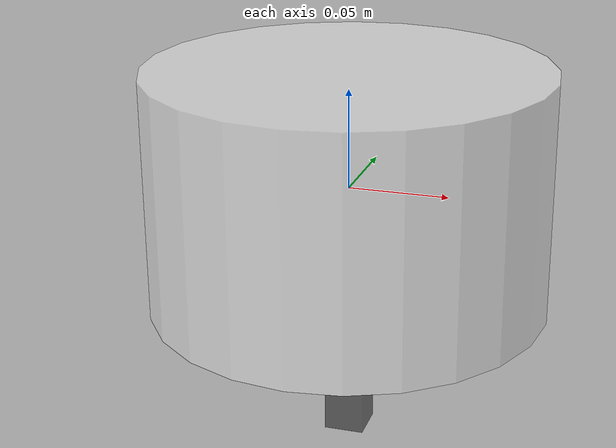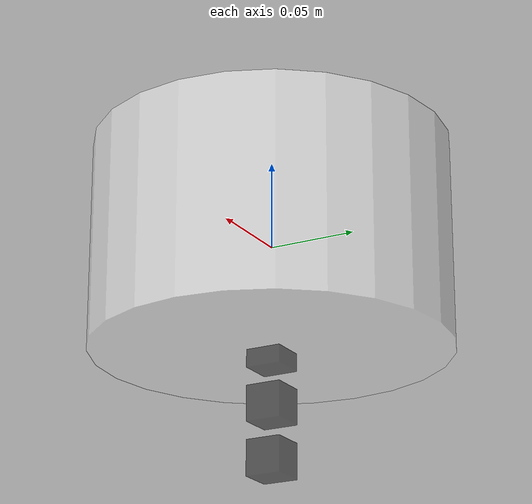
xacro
<?xml version="1.0"?>
<robot xmlns:xacro="http://www.ros.org/wiki/xacro" name="first_robot">
    <xacro:macro name="base_link" params="length radius">

        <!--机器人身体部分-->
        <link name="base_link">
            <!--部件外观描述-->
            <visual>
                <!--部件沿着自己几何中心的偏移和旋转量-->
                <origin xyz="0.0 0.0 0.0" rpy="0.0 0.0 0.0"/>
                <!--几何形状-->
                <geometry>
                <cylinder radius="${radius}" length="${length}"/>
                </geometry>
                <!--材质-->
                <material name="white">
                    <color rgba="1.0 1.0 1.0 0.5"/>
                </material>
            </visual>
        </link>

    </xacro:macro>

    <xacro:macro name="imu_link" params="imu_name xyz" >
            <!--机器人的imu部件，惯性测量传感器-->
            <link name="${imu_name}_link">
            <!--部件外观描述-->
            <visual>
                <!--部件沿着自己几何中心的偏移和旋转量-->
                <origin xyz="0.0 0.0 0.0" rpy="0.0 0.0 0.0"/>
                <!--几何形状-->
                <geometry>
                <box size="0.02 0.02 0.02"/>
                </geometry>
                <!--材质-->
                <material name="black">
                    <color rgba="0.0 0.0 0.0 0.5"/>
                </material>
            </visual>
        </link>

        <!--机器人的关节，组合机器人的部件-->
        <joint name="${imu_name}_joint" type="fixed">
            <parent link="base_link"/>
            <child link="${imu_name}_link"/>
            <origin xyz="${xyz}" rpy="0.0 0.0 0.0"/>
        </joint>
    </xacro:macro>

    <xacro:base_link length ="0.12" radius="0.1" />
    <xacro:imu_link imu_name="imu_up" xyz="0.0 0.0 0.03" />
    <xacro:imu_link imu_name="imu_down" xyz="0.0 0.0 -0.03" />
    <xacro:imu_link imu_name="imu_down1" xyz="0.0 0.0 -0.06" />
    <xacro:imu_link imu_name="imu_down2" xyz="0.0 0.0 -0.09" />
    <xacro:imu_link imu_name="imu_down3" xyz="0.0 0.0 -0.12" />
</robot>
